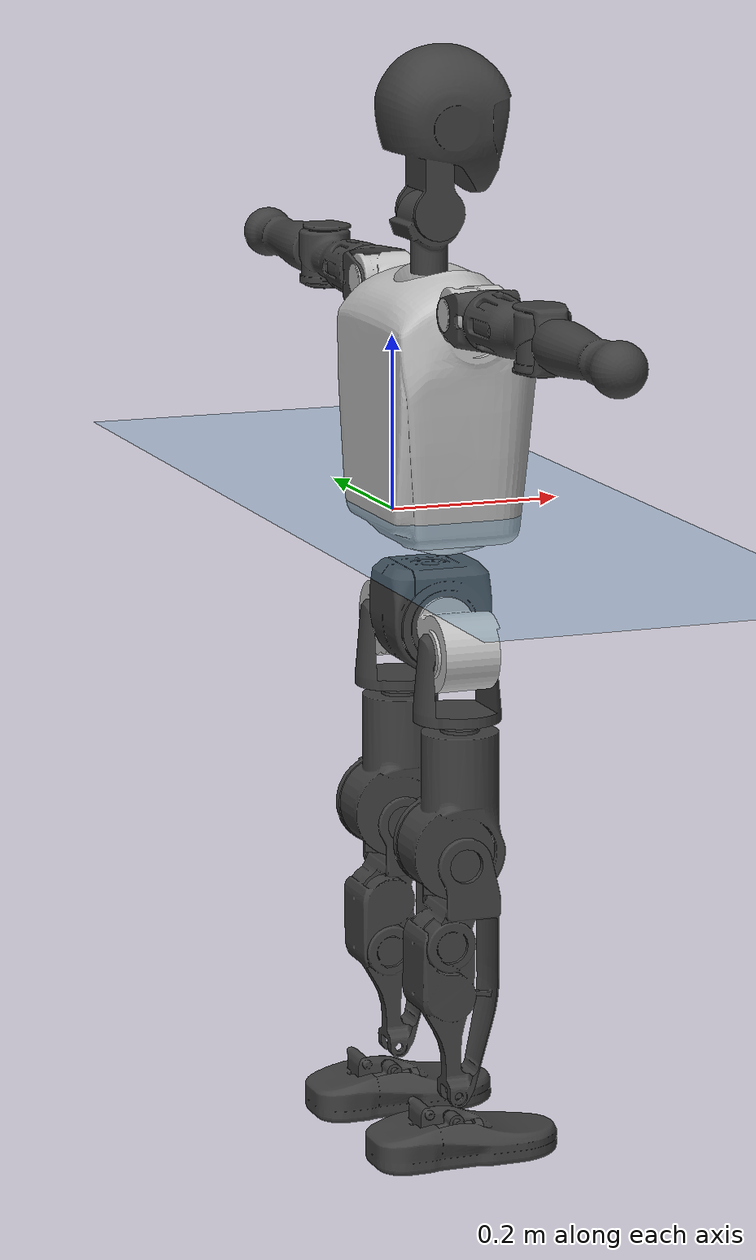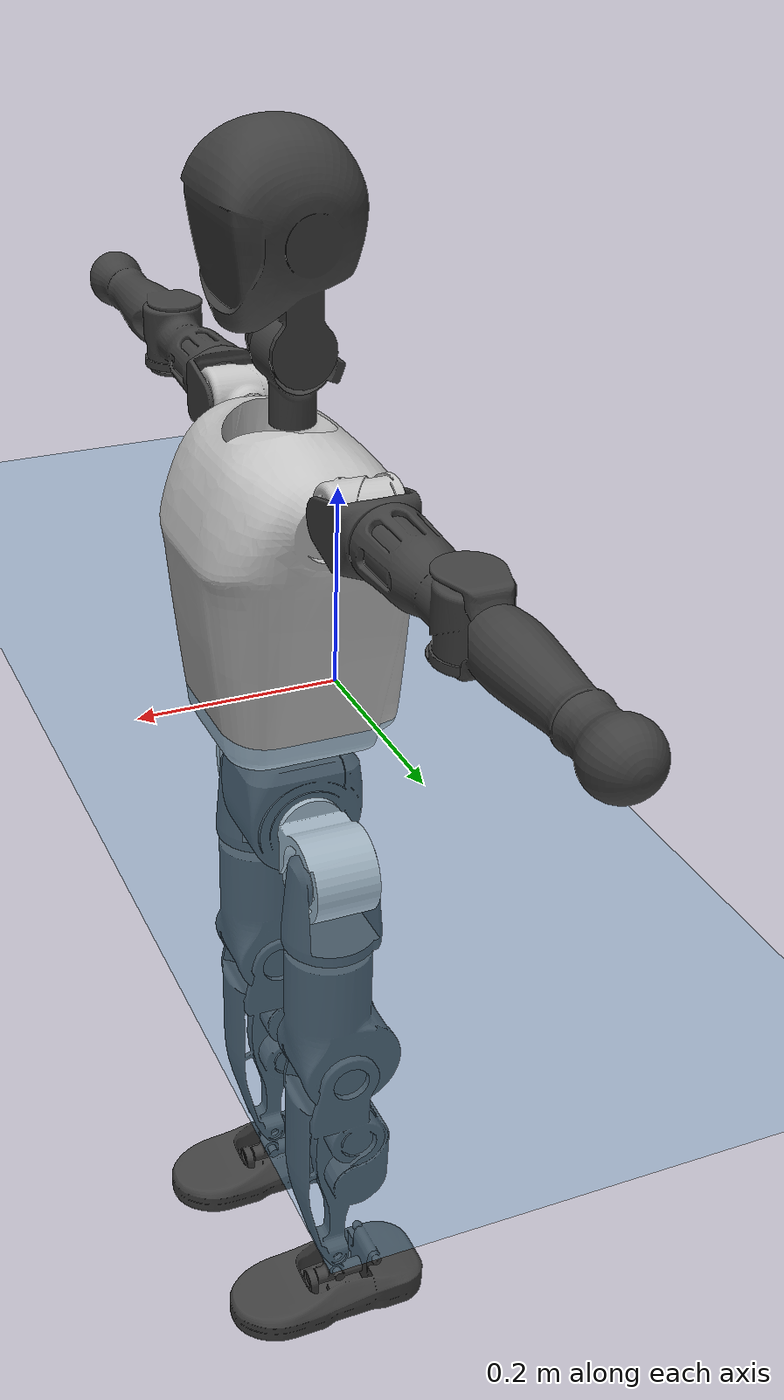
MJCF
<mujoco model="T1">
  <compiler angle="radian" assetdir="assets" balanceinertia="true" inertiafromgeom="false"/>

  <option timestep="0.005" density="1.2" viscosity="2e-05"/>

  <size nkey="1"/>

  <visual>
    <quality shadowsize="8192"/>
    <map shadowclip="0.5"/>
  </visual>

  <default>
    <default class="/">
      <joint armature="0.01" damping="0.01" frictionloss="0.1"/>
      <geom contype="0" conaffinity="0" group="1" solref="-1000 -80"/>
      <site size="0.01 0.005 0.005" group="5"/>
      <general forcelimited="true" biastype="affine" gainprm="25" biasprm="0 -25 -0.6"/>
      <default class="t1">
        <geom rgba="0.25 0.25 0.25 1"/>
        <default class="visual">
          <geom type="mesh" group="2"/>
        </default>
        <default class="collision">
          <geom group="3"/>
        </default>
        <default class="foot">
          <geom size="0.1115 0.05 0.015" type="box" condim="6" group="4" priority="1" solimp="0.015 1 0.015"/>
        </default>
        <default class="reward_collision_sphere">
          <geom group="5" rgba="1 0 0 1"/>
        </default>
      </default>
    </default>
  </default>

  <asset>
    <texture type="skybox" colorspace="auto" name="//unnamed_texture_0" builtin="gradient" rgb1="0.95 0.95 0.95" rgb2="0.95 0.95 0.95" width="100" height="600"/>
    <texture type="2d" colorspace="auto" name="texplane" builtin="checker" rgb1="0.345 0.575 0.748" rgb2="0.345 0.575 0.748" markrgb="1 1 1" width="512" height="512"/>
    <material name="MatPlane" class="/" texture="texplane" texuniform="true" texrepeat="2 2" specular="0.9"/>
    <mesh name="Trunk" class="/" file="Trunk.stl"/>
    <mesh name="H1" class="/" file="H1.stl"/>
    <mesh name="H2" class="/" file="H2.stl"/>
    <mesh name="AL1" class="/" file="AL1.stl"/>
    <mesh name="AL2" class="/" file="AL2.stl"/>
    <mesh name="AL3" class="/" file="AL3.stl"/>
    <mesh name="left_hand_link" class="/" file="left_hand_link.stl"/>
    <mesh name="AR1" class="/" file="AR1.stl"/>
    <mesh name="AR2" class="/" file="AR2.stl"/>
    <mesh name="AR3" class="/" file="AR3.stl"/>
    <mesh name="right_hand_link" class="/" file="right_hand_link.stl"/>
    <mesh name="Waist" class="/" file="Waist.stl"/>
    <mesh name="Hip_Pitch_Left" class="/" file="Hip_Pitch_Left.stl"/>
    <mesh name="Hip_Roll_Left" class="/" file="Hip_Roll_Left.stl"/>
    <mesh name="Hip_Yaw_Left" class="/" file="Hip_Yaw_Left.stl"/>
    <mesh name="Shank_Left" class="/" file="Shank_Left.stl"/>
    <mesh name="Ankle_Cross_Left" class="/" file="Ankle_Cross_Left.stl"/>
    <mesh name="left_foot_link" class="/" file="left_foot_link.stl"/>
    <mesh name="Hip_Pitch_Right" class="/" file="Hip_Pitch_Right.stl"/>
    <mesh name="Hip_Roll_Right" class="/" file="Hip_Roll_Right.stl"/>
    <mesh name="Hip_Yaw_Right" class="/" file="Hip_Yaw_Right.stl"/>
    <mesh name="Shank_Right" class="/" file="Shank_Right.stl"/>
    <mesh name="Ankle_Cross_Right" class="/" file="Ankle_Cross_Right.stl"/>
    <mesh name="right_foot_link" class="/" file="right_foot_link.stl"/>
  </asset>

  <worldbody>
    <geom name="floor" class="/" size="100 100 0.125" type="plane" group="0" material="MatPlane"/>
    <light name="toplight_shadow" class="/" pos="0 0 5" dir="0.0990148 0.0990148 -0.990148" type="directional" ambient="0.04 0.04 0.04" diffuse="0.55 0.55 0.55" specular="0.12 0.12 0.12"/>
    <light name="toplight_fill" class="/" pos="0 0 5" dir="0.0990148 0.0990148 -0.990148" type="directional" castshadow="false" ambient="0.04 0.04 0.04" diffuse="0.3 0.3 0.3" specular="0.08 0.08 0.08"/>
    <body name="trunk" childclass="t1" pos="4.67418e-05 0.000229299 -0.00208725" quat="0.999999 -7.56879e-05 -0.000912549 0.000699208">
      <inertial pos="0.0395024 -0.000418775 0.117481" quat="0.999956 -0.000167652 -0.00938189 -0.000475393" mass="9.04561" diaginertia="0.0177167 0.0576526 0.0934812"/>
      <joint name="//unnamed_joint_0" type="free" armature="0" damping="0" frictionloss="0"/>
      <geom name="//unnamed_geom_1" class="visual" rgba="0.76 0.76 0.76 1" mesh="Trunk"/>
      <geom name="//unnamed_geom_2" class="collision" size="0.0696502 0.0928669 0.1393" pos="0.0433405 0 0.133641" type="box"/>
      <geom name="//unnamed_geom_3" class="reward_collision_sphere" size="0.106797" pos="0.0433405 0 0.111367"/>
      <geom name="//unnamed_geom_4" class="reward_collision_sphere" size="0.01393" pos="0.0433405 0.0807496 0"/>
      <geom name="//unnamed_geom_5" class="reward_collision_sphere" size="0.01393" pos="0.0433405 -0.0807496 0"/>
      <geom name="//unnamed_geom_6" class="reward_collision_sphere" size="0.01393" pos="0.0433405 0.101649 0.200461"/>
      <geom name="//unnamed_geom_7" class="reward_collision_sphere" size="0.01393" pos="0.0433405 -0.101649 0.200461"/>
      <site name="imu" pos="-0.0101611 -0.00245409 0.00165772" size="0.00928669"/>
      <camera name="track" pos="0 -1.89999 0" quat="0.707107 0.707107 0 0" mode="trackcom"/>
      <camera name="ego_camera" pos="0.0881257 0 0.467742" quat="-0.5 -0.5 0.5 0.5"/>
      <body name="H1" pos="0.0446326 -0.000309498 0.270965" quat="0.999999 -0.000973345 -0.000240157 -4.6898e-05">
        <inertial pos="-0.000135048 -0.00227322 0.0630944" quat="0.764586 -0.0153329 0.00213612 0.644335" mass="0.355075" diaginertia="4.70957e-05 0.000175878 0.000254317"/>
        <joint name="AAHead_yaw" pos="0 0 0" axis="0.000821759 -0.00285525 0.999996" range="-1.61883 1.58952" armature="0.009528" damping="0.0118068" frictionloss="0.0883039"/>
        <geom name="//unnamed_geom_8" class="visual" mesh="H1"/>
        <body name="H2" pos="0.000838286 -0.00103917 0.0694897" quat="0.999999 0.000528379 -0.000443479 0.000910623">
          <inertial pos="0.00529797 0.000833357 0.110072" quat="0.988454 0.105961 -0.0745397 -0.0785743" mass="0.489767" diaginertia="0.00039604 0.00146784 0.00294889"/>
          <joint name="Head_pitch" pos="0 0 0" axis="-0.000287332 -0.999946 -0.0103649" range="-1.2384 0.392091" armature="0.0100574" damping="0.0168256" frictionloss="0.103132"/>
          <geom name="//unnamed_geom_9" class="visual" mesh="H2"/>
          <geom name="//unnamed_geom_10" class="collision" size="0.0742935" pos="0.00722342 0 0.122504"/>
          <geom name="//unnamed_geom_11" class="reward_collision_sphere" size="0.0835802" pos="0.0144468 0 0.111367"/>
        </body>
      </body>
      <body name="AL1" pos="0.0446931 0.102065 0.244416" quat="1 -0.000136296 0.000289652 0.000218864">
        <inertial pos="-0.00293227 0.043353 0.000586831" quat="0.50437 0.494017 -0.502409 0.499143" mass="0.424348" diaginertia="0.000265872 0.0010314 0.000498484"/>
        <joint name="Left_Shoulder_Pitch" pos="0 0 0" axis="4.44664e-06 1 1.72025e-05" range="-3.30661 1.22067" armature="0.00955353" damping="0.00629424" frictionloss="0.0971084"/>
        <geom name="//unnamed_geom_12" class="visual" rgba="0.76 0.76 0.76 1" mesh="AL1"/>
        <body name="AL2" pos="0.00140023 0.0443323 -0.00200239" quat="1 8.4158e-05 0.000816138 0.000418345">
          <inertial pos="0.00372304 0.0360628 -0.00191427" quat="0.489165 0.509222 -0.48644 0.514574" mass="0.129357" diaginertia="7.94001e-05 0.00026583 0.00029823"/>
          <joint name="Left_Shoulder_Roll" pos="0 0 0" axis="-0.999941 -0.0102132 -0.00360579" range="-1.57928 1.75422" armature="0.00932144" damping="0.00584736" frictionloss="0.0832529"/>
          <geom name="//unnamed_geom_13" class="visual" mesh="AL2"/>
          <body name="AL3" pos="-0.00140175 0.057845 0.000950071" quat="1 0.000203138 -0.000149063 7.17187e-05">
            <inertial pos="0.000222034 0.0811013 0.0014491" quat="0.706655 0.707558 7.82438e-05 0.000862564" mass="0.811774" diaginertia="0.00250363 0.0098234 0.00106863"/>
            <joint name="Left_Elbow_Pitch" pos="0 0 0" axis="-0.00885876 -0.999961 0.000708714" range="-2.27822 2.26875" armature="0.00957452" damping="0.0119893" frictionloss="0.0887182"/>
            <geom name="//unnamed_geom_14" class="visual" mesh="AL3"/>
            <geom name="//unnamed_geom_15" class="collision" size="0.0278601 0.0696502" pos="0 0.0474997 0" quat="0.707105 0.707108 0 0" type="cylinder"/>
            <geom name="//unnamed_geom_16" class="reward_collision_sphere" size="0.0334321"/>
            <body name="left_hand_link" pos="0.000143982 0.138024 0.00303182" quat="1 0.000481211 0.000197302 7.0255e-05">
              <inertial pos="-0.000131109 0.10348 0.0011921" quat="0.707798 0.706414 -0.000910117 -0.000273038" mass="0.272424" diaginertia="0.00160475 0.00650206 0.000378894"/>
              <joint name="Left_Elbow_Yaw" pos="0 0 0" axis="0.00617528 0.0104194 0.999927" range="-2.46335 0.00549957" armature="0.00912836" damping="0.0136196" frictionloss="0.093519"/>
              <geom name="//unnamed_geom_17" class="visual" mesh="left_hand_link"/>
              <geom name="//unnamed_geom_18" class="collision" size="0.0278601 0.0812586" pos="0 0.123499 0" quat="0.707105 0.707108 0 0" type="cylinder"/>
              <geom name="//unnamed_geom_19" class="reward_collision_sphere" size="0.0464335"/>
              <geom name="//unnamed_geom_20" class="reward_collision_sphere" size="0.0325034" pos="0 0.104499 0"/>
              <geom name="//unnamed_geom_21" class="reward_collision_sphere" size="0.0325034" pos="0 0.204249 0"/>
            </body>
          </body>
        </body>
      </body>
      <body name="AR1" pos="0.0421697 -0.100068 0.245427" quat="0.999999 0.000347191 0.000794543 0.000770238">
        <inertial pos="-0.00167161 -0.0422532 -0.000811179" quat="0.503187 0.498626 -0.503603 0.49453" mass="0.428839" diaginertia="0.00026795 0.00101048 0.000509867"/>
        <joint name="Right_Shoulder_Pitch" pos="0 0 0" axis="-0.00255004 -0.99999 -0.00357012" range="-1.22721 3.31389" armature="0.00934518" damping="0.000993181" frictionloss="0.0948949"/>
        <geom name="//unnamed_geom_22" class="visual" rgba="0.76 0.76 0.76 1" mesh="AR1"/>
        <body name="AR2" pos="-3.40317e-05 -0.0449257 -0.00141857" quat="1 -3.96001e-06 -0.00012941 -0.000122723">
          <inertial pos="0.00370482 -0.0359274 0.000981232" quat="0.511676 0.488055 -0.511717 0.487992" mass="0.125749" diaginertia="8.12703e-05 0.000267548 0.000296807"/>
          <joint name="Right_Shoulder_Roll" pos="0 0 0" axis="-0.999997 -0.000963616 0.00223416" range="-1.75789 1.567" armature="0.00947328" damping="0.0024338" frictionloss="0.100455"/>
          <geom name="//unnamed_geom_23" class="visual" mesh="AR2"/>
          <body name="AR3" pos="-0.00137992 -0.0561546 0.000571141" quat="1 0.000164426 0.000345768 -2.2665e-05">
            <inertial pos="-0.00261611 -0.0811689 -0.000664208" quat="0.708627 0.705577 0.000110599 0.00289263" mass="0.840319" diaginertia="0.0025364 0.00978119 0.00106101"/>
            <joint name="Right_Elbow_Pitch" pos="0 0 0" axis="0.00233568 0.999997 0.00119771" range="-2.27301 2.27902" armature="0.00875033" damping="0.0108226" frictionloss="0.0905973"/>
            <geom name="//unnamed_geom_24" class="visual" mesh="AR3"/>
            <geom name="//unnamed_geom_25" class="collision" size="0.0278601 0.0696502" pos="0 -0.0474997 0" quat="0.707105 0.707108 0 0" type="cylinder"/>
            <geom name="//unnamed_geom_26" class="reward_collision_sphere" size="0.0334321"/>
            <body name="right_hand_link" pos="-0.000619697 -0.139412 0.00183356" quat="1 -2.83942e-06 5.03468e-05 0.000122118">
              <inertial pos="-0.000536651 -0.103051 0.00186123" quat="0.707235 0.706963 0.000768597 -0.00463662" mass="0.26404" diaginertia="0.0015984 0.0064223 0.000368223"/>
              <joint name="Right_Elbow_Yaw" pos="0 0 0" axis="0.00625658 -0.000112204 0.99998" range="-0.0116445 2.43466" armature="0.00964925" damping="0.0112918" frictionloss="0.0953319"/>
              <geom name="//unnamed_geom_27" class="visual" mesh="right_hand_link"/>
              <geom name="//unnamed_geom_28" class="collision" size="0.0278601 0.0812586" pos="0 -0.123499 0" quat="0.707105 0.707108 0 0" type="cylinder"/>
              <geom name="//unnamed_geom_29" class="reward_collision_sphere" size="0.0464335"/>
              <geom name="//unnamed_geom_30" class="reward_collision_sphere" size="0.0325034" pos="0 -0.104499 0"/>
              <geom name="//unnamed_geom_31" class="reward_collision_sphere" size="0.0325034" pos="0 -0.204249 0"/>
            </body>
          </body>
        </body>
      </body>
      <body name="Waist" pos="0.0456895 6.63611e-06 -0.128355" quat="1 -2.48507e-05 4.8589e-05 0.000111938">
        <inertial pos="0.00149155 -0.000531988 0.00729964" quat="0.983593 0.000191122 -0.180373 0.00309166" mass="2.0509" diaginertia="0.00104908 0.00417394 0.00808626"/>
        <joint name="Waist" pos="0 0 0" axis="0.0043378 -0.00265057 0.999987" range="-1.58513 1.56084" armature="0.00906916" damping="0" frictionloss="0.0921922"/>
        <geom name="//unnamed_geom_32" class="visual" mesh="Waist"/>
        <body name="Hip_Pitch_Left" pos="0.000382269 0.102778 0.00155495" quat="1 6.45593e-05 -1.77332e-05 3.73289e-05">
          <inertial pos="0.000678012 -0.0072996 -0.0226297" quat="0.975246 0.220551 0.0157851 -0.00181848" mass="0.83687" diaginertia="0.000355355 0.00113471 0.00214107"/>
          <joint name="Left_Hip_Pitch" pos="0 0 0" axis="-0.000505585 0.999994 0.00343316" range="-1.77416 1.56982" armature="0.0093613" damping="0.00381503" frictionloss="0.0861704"/>
          <geom name="//unnamed_geom_33" class="visual" rgba="0.76 0.76 0.76 1" mesh="Hip_Pitch_Left"/>
          <body name="Hip_Roll_Left" pos="-6.8028e-05 -0.0009153 -0.0226541" quat="1 -0.000209355 0.000128428 9.65186e-05">
            <inertial pos="0.000509386 0.000298781 -0.0595939" quat="0.70838 -0.00869307 -0.00820256 0.70573" mass="0.309016" diaginertia="0.000347417 0.00118215 0.000889102"/>
            <joint name="Left_Hip_Roll" pos="0 0 0" axis="-0.99998 -0.00631154 0.000166774" range="-1.55508 0.200908" armature="0.00935432" damping="0.0122442" frictionloss="0.0899186"/>
            <geom name="//unnamed_geom_34" class="visual" mesh="Hip_Roll_Left"/>
            <geom name="//unnamed_geom_35" class="reward_collision_sphere" size="0.0510768"/>
            <body name="Hip_Yaw_Left" pos="0.000127414 -0.000633538 -0.0894946" quat="1 -2.88059e-05 -0.000122153 4.45489e-05">
              <inertial pos="-0.00574833 -0.000401187 -0.101492" quat="0.697957 -0.0296404 -0.0291661 0.714931" mass="1.72014" diaginertia="0.0051981 0.0192772 0.0044131"/>
              <joint name="Left_Hip_Yaw" pos="0 0 0" axis="-0.00080345 -0.00195526 -0.999998" range="-0.998106 1.0244" armature="0.00893653" damping="0.00895156" frictionloss="0.0849359"/>
              <geom name="//unnamed_geom_36" class="visual" mesh="Hip_Yaw_Left"/>
              <geom name="//unnamed_geom_37" class="collision" size="0.0464335 0.0742935" type="cylinder"/>
              <body name="Shank_Left" pos="-0.00918505 0.00184252 -0.148482" quat="0.999999 -8.31179e-06 -0.000849912 -0.000751208">
                <inertial pos="-0.00488253 -0.00193604 -0.137456" quat="0.9972 -0.00349762 -0.0305653 0.0681564" mass="1.37997" diaginertia="0.00687747 0.0263434 0.00317334"/>
                <joint name="Left_Knee_Pitch" pos="0 0 0" axis="-0.00248817 0.999996 0.0010283" range="0.0158752 2.33809" armature="0.00961039" damping="0.0141946" frictionloss="0.0841991"/>
                <geom name="//unnamed_geom_38" class="visual" mesh="Shank_Left"/>
                <geom name="//unnamed_geom_39" class="collision" size="0.0464335 0.0696502" pos="0 0 -0.133641" type="cylinder"/>
                <geom name="//unnamed_geom_40" class="reward_collision_sphere" size="0.0603635"/>
                <body name="Ankle_Cross_Left" pos="-0.00245111 0.000727823 -0.312709" quat="1 9.97005e-05 7.15955e-06 -5.46711e-05">
                  <inertial pos="-0.00210501 -0.000337369 -0.0085063" quat="0.436789 0.558985 0.547102 0.444332" mass="0.056999" diaginertia="5.69617e-06 1.94989e-05 1.91863e-05"/>
                  <joint name="Left_Ankle_Pitch" pos="0 0 0" axis="0.000631732 1 -0.000652348" range="-0.874706 0.316032" armature="0.00924872" damping="0.0066543" frictionloss="0.0943342"/>
                  <geom name="//unnamed_geom_41" class="visual" mesh="Ankle_Cross_Left"/>
                  <body name="left_foot_link" pos="0.00034998 0.000177222 -0.0139404" quat="1 -1.11881e-06 4.59043e-06 -1.9265e-06">
                    <inertial pos="-0.000168875 0.000204587 -0.00774988" quat="2.4374e-05 0.620771 0.000803063 0.783991" mass="0.554288" diaginertia="0.000532332 0.00185681 0.00381234"/>
                    <joint name="Left_Ankle_Roll" pos="0 0 0" axis="-0.999998 -0.00198514 0.000797623" range="-0.453368 0.42382" armature="0.00934429" damping="0.0203706" frictionloss="0.092902"/>
                    <geom name="//unnamed_geom_42" class="visual" mesh="left_foot_link"/>
                    <geom name="left_foot" class="foot" size="0.108762 0.0511003 0.0139917" pos="0.00722342 0 -0.0167051"/>
                    <geom name="//unnamed_geom_44" class="reward_collision_sphere" size="0.0482908" pos="0.00722342 0 -0.0167051"/>
                    <geom name="//unnamed_geom_45" class="reward_collision_sphere" size="0.0278601" pos="0.0686224 -0.0218499 -0.0167051"/>
                    <geom name="//unnamed_geom_46" class="reward_collision_sphere" size="0.0278601" pos="-0.0505639 -0.0218499 -0.0167051"/>
                    <site name="left_foot" class="foot" pos="0.00722342 0 -0.0167051" size="0.00928669"/>
                  </body>
                </body>
              </body>
            </body>
          </body>
        </body>
        <body name="Hip_Pitch_Right" pos="-0.0020375 -0.10117 0.00140407" quat="1 -0.000510014 -0.000376169 -0.000316851">
          <inertial pos="0.000830251 0.0049464 -0.0207609" quat="0.972708 -0.231699 0.0121247 -0.00290398" mass="0.809422" diaginertia="0.000352853 0.00112177 0.00210444"/>
          <joint name="Right_Hip_Pitch" pos="0 0 0" axis="0.000438673 -0.999999 0.0015143" range="-1.56901 1.76602" armature="0.00932085" damping="0.00689776" frictionloss="0.103053"/>
          <geom name="//unnamed_geom_47" class="visual" rgba="0.76 0.76 0.76 1" mesh="Hip_Pitch_Right"/>
          <body name="Hip_Roll_Right" pos="-0.0023665 -0.000747644 -0.021202" quat="1 0.000137034 0.000186017 -2.07658e-05">
            <inertial pos="0.00183496 9.2046e-05 -0.0604164" quat="0.706947 -0.0057869 -0.00653784 0.707213" mass="0.308727" diaginertia="0.000332587 0.00115989 0.000870986"/>
            <joint name="Right_Hip_Roll" pos="0 0 0" axis="-0.999996 -0.000786076 0.00256221" stiffness="0.000469523" range="-0.195606 1.5889" armature="0.00943302" damping="0.01296" frictionloss="0.0989231"/>
            <geom name="//unnamed_geom_48" class="visual" mesh="Hip_Roll_Right"/>
            <geom name="//unnamed_geom_49" class="reward_collision_sphere" size="0.0510768"/>
            <body name="Hip_Yaw_Right" pos="0.00124036 0.000532832 -0.0901539" quat="1 0.000239483 0.000135979 -0.000147908">
              <inertial pos="-0.00613139 0.00197104 -0.0997492" quat="0.714734 -0.0321132 -0.0335221 0.697854" mass="1.70888" diaginertia="0.00502779 0.0187865 0.00436674"/>
              <joint name="Right_Hip_Yaw" pos="0 0 0" axis="-0.00165414 -0.000735768 -0.999998" stiffness="0.00429173" range="-1.00837 1.00613" armature="0.0092083" damping="0.0142125" frictionloss="0.0930424"/>
              <geom name="//unnamed_geom_50" class="visual" mesh="Hip_Yaw_Right"/>
              <geom name="//unnamed_geom_51" class="collision" size="0.0464335 0.0742935" type="cylinder"/>
              <body name="Shank_Right" pos="-0.00882272 -0.00120511 -0.147352" quat="1 -3.42277e-05 -4.60366e-06 7.01329e-05">
                <inertial pos="-0.00694628 -0.00143333 -0.137073" quat="0.998838 0.00522322 -0.0299966 -0.0373474" mass="1.40197" diaginertia="0.00676933 0.0265779 0.00329292"/>
                <joint name="Right_Knee_Pitch" pos="0 0 0" axis="0.00247441 -0.999996 0.00141584" range="-2.34624 -0.0394699" armature="0.00918974" damping="0.00566896" frictionloss="0.0904638"/>
                <geom name="//unnamed_geom_52" class="visual" mesh="Shank_Right"/>
                <geom name="//unnamed_geom_53" class="collision" size="0.0464335 0.0696502" pos="0 0 -0.133641" type="cylinder"/>
                <geom name="//unnamed_geom_54" class="reward_collision_sphere" size="0.0603635"/>
                <body name="Ankle_Cross_Right" pos="0.000754161 7.65089e-05 -0.313722" quat="1 -0.000522996 -0.000120163 0.00020642">
                  <inertial pos="-0.0031676 0.000735334 -0.00955456" quat="0.44371 0.551397 0.549721 0.443722" mass="0.0592822" diaginertia="5.74905e-06 2.00226e-05 1.96234e-05"/>
                  <joint name="Right_Ankle_Pitch" pos="0 0 0" axis="-0.00145964 -0.999999 -0.000250949" range="-0.301944 0.871195" armature="0.00939721" damping="0.00286912" frictionloss="0.0930707"/>
                  <geom name="//unnamed_geom_55" class="visual" mesh="Ankle_Cross_Right"/>
                  <body name="right_foot_link" pos="0.00149782 -3.57502e-05 -0.013417" quat="1 -8.17214e-06 -6.06254e-06 4.43885e-06">
                    <inertial pos="0.000262272 0.000932395 -0.00786213" quat="-0.000101026 0.620766 -1.60401e-05 0.783996" mass="0.550941" diaginertia="0.000533849 0.00184465 0.00379807"/>
                    <joint name="Right_Ankle_Roll" pos="0 0 0" axis="-1 -0.00022585 -0.00033452" range="-0.420772 0.441857" armature="0.00935161" damping="0.0129803" frictionloss="0.104106"/>
                    <geom name="//unnamed_geom_56" class="visual" mesh="right_foot_link"/>
                    <geom name="right_foot" class="foot" size="0.103478 0.0413809 0.0153403" pos="0.00722342 0 -0.0167051"/>
                    <geom name="//unnamed_geom_58" class="reward_collision_sphere" size="0.0371468"/>
                    <geom name="//unnamed_geom_59" class="reward_collision_sphere" size="0.0278601" pos="0.00722342 0 -0.0167051"/>
                    <geom name="//unnamed_geom_60" class="reward_collision_sphere" size="0.0278601" pos="0.0686224 0.0218499 -0.0167051"/>
                    <geom name="//unnamed_geom_61" class="reward_collision_sphere" size="0.0278601" pos="-0.0505639 0.0218499 -0.0167051"/>
                    <site name="right_foot" class="foot" pos="0.00722342 0 -0.0167051" size="0.00928669"/>
                  </body>
                </body>
              </body>
            </body>
          </body>
        </body>
      </body>
    </body>
  </worldbody>

  <contact>
    <pair class="/" geom1="floor" geom2="left_foot" name="//unnamed_contact_0"/>
    <pair class="/" geom1="floor" geom2="right_foot" name="//unnamed_contact_1"/>
  </contact>

  <actuator>
    <general name="AAHead_yaw" class="/" joint="AAHead_yaw" forcerange="-6.53594 6.53594" gainprm="23.7514" biasprm="0 -23.7514 -0.542066"/>
    <general name="Head_pitch" class="/" joint="Head_pitch" forcerange="-6.31723 6.31723" gainprm="23.7514" biasprm="0 -23.7514 -0.542066"/>
    <general name="Left_Shoulder_Pitch" class="/" joint="Left_Shoulder_Pitch" forcerange="-17.1476 17.1476" gainprm="23.7514" biasprm="0 -23.7514 -0.542066"/>
    <general name="Left_Shoulder_Roll" class="/" joint="Left_Shoulder_Roll" forcerange="-16.1368 16.1368" gainprm="23.7514" biasprm="0 -23.7514 -0.542066"/>
    <general name="Left_Elbow_Pitch" class="/" joint="Left_Elbow_Pitch" forcerange="-15.8343 15.8343" gainprm="23.7514" biasprm="0 -23.7514 -0.542066"/>
    <general name="Left_Elbow_Yaw" class="/" joint="Left_Elbow_Yaw" forcerange="-16.7611 16.7611" gainprm="23.7514" biasprm="0 -23.7514 -0.542066"/>
    <general name="Right_Shoulder_Pitch" class="/" joint="Right_Shoulder_Pitch" forcerange="-16.437 16.437" gainprm="23.7514" biasprm="0 -23.7514 -0.542066"/>
    <general name="Right_Shoulder_Roll" class="/" joint="Right_Shoulder_Roll" forcerange="-16.6956 16.6956" gainprm="23.7514" biasprm="0 -23.7514 -0.542066"/>
    <general name="Right_Elbow_Pitch" class="/" joint="Right_Elbow_Pitch" forcerange="-16.741 16.741" gainprm="23.7514" biasprm="0 -23.7514 -0.542066"/>
    <general name="Right_Elbow_Yaw" class="/" joint="Right_Elbow_Yaw" forcerange="-16.9656 16.9656" gainprm="23.7514" biasprm="0 -23.7514 -0.542066"/>
    <general name="Waist" class="/" joint="Waist" forcerange="-28.0627 28.0627" gainprm="23.7514" biasprm="0 -23.7514 -0.542066"/>
    <general name="Left_Hip_Pitch" class="/" joint="Left_Hip_Pitch" forcerange="-42.1221 42.1221" gainprm="23.7514" biasprm="0 -23.7514 -0.542066"/>
    <general name="Left_Hip_Roll" class="/" joint="Left_Hip_Roll" forcerange="-30.1586 30.1586" gainprm="23.7514" biasprm="0 -23.7514 -0.542066"/>
    <general name="Left_Hip_Yaw" class="/" joint="Left_Hip_Yaw" forcerange="-27.8149 27.8149" gainprm="23.7514" biasprm="0 -23.7514 -0.542066"/>
    <general name="Left_Knee_Pitch" class="/" joint="Left_Knee_Pitch" forcerange="-59.556 59.556" gainprm="23.7514" biasprm="0 -23.7514 -0.542066"/>
    <general name="Left_Ankle_Pitch" class="/" joint="Left_Ankle_Pitch" forcerange="-18.61 18.61" gainprm="23.7514" biasprm="0 -23.7514 -0.542066"/>
    <general name="Left_Ankle_Roll" class="/" joint="Left_Ankle_Roll" forcerange="-14.1091 14.1091" gainprm="23.7514" biasprm="0 -23.7514 -0.542066"/>
    <general name="Right_Hip_Pitch" class="/" joint="Right_Hip_Pitch" forcerange="-39.1862 39.1862" gainprm="23.7514" biasprm="0 -23.7514 -0.542066"/>
    <general name="Right_Hip_Roll" class="/" joint="Right_Hip_Roll" forcerange="-27.4896 27.4896" gainprm="23.7514" biasprm="0 -23.7514 -0.542066"/>
    <general name="Right_Hip_Yaw" class="/" joint="Right_Hip_Yaw" forcerange="-28.1271 28.1271" gainprm="23.7514" biasprm="0 -23.7514 -0.542066"/>
    <general name="Right_Knee_Pitch" class="/" joint="Right_Knee_Pitch" forcerange="-55.2012 55.2012" gainprm="23.7514" biasprm="0 -23.7514 -0.542066"/>
    <general name="Right_Ankle_Pitch" class="/" joint="Right_Ankle_Pitch" forcerange="-18.7375 18.7375" gainprm="23.7514" biasprm="0 -23.7514 -0.542066"/>
    <general name="Right_Ankle_Roll" class="/" joint="Right_Ankle_Roll" forcerange="-13.6526 13.6526" gainprm="23.7514" biasprm="0 -23.7514 -0.542066"/>
  </actuator>

  <sensor>
    <gyro site="imu" name="imu_angular_velocity"/>
    <velocimeter site="imu" name="imu_linear_velocity"/>
    <framelinvel objtype="site" objname="left_foot" name="left_foot_global_linear_velocity"/>
    <framelinvel objtype="site" objname="right_foot" name="right_foot_global_linear_velocity"/>
  </sensor>

  <keyframe>
    <key name="home" qpos="0 0 0.6385 1 0 0 0 0 0 0 1.4 0 -0.4 0 -1.4 0 0.4 0 -0.4 0 0 0.8 -0.4 0 0.4 0 0 -0.8 0.4 0"/>
  </keyframe>
</mujoco>
